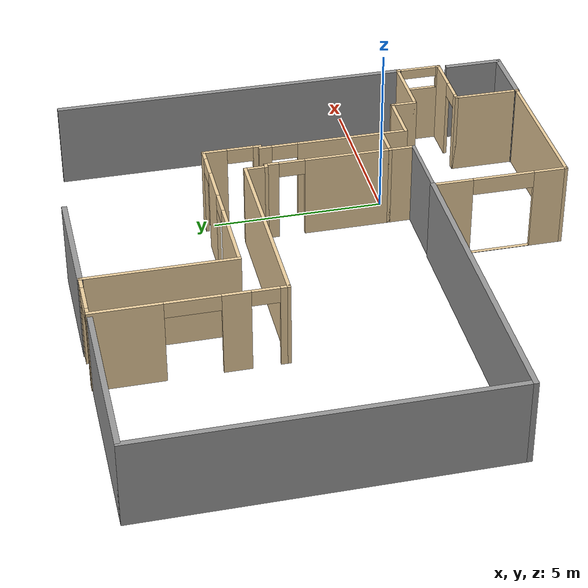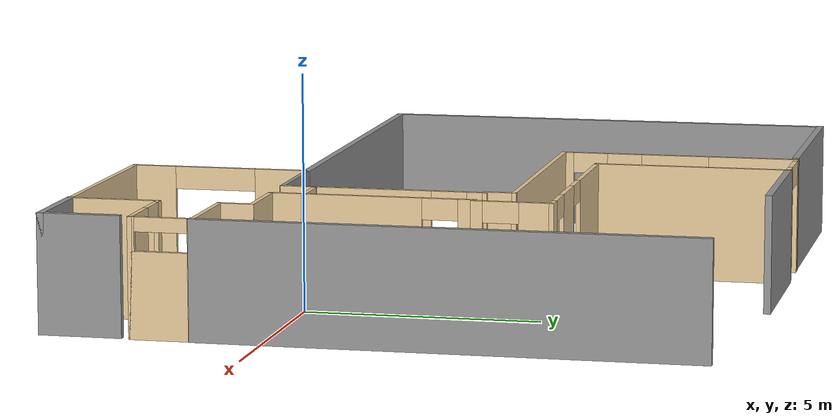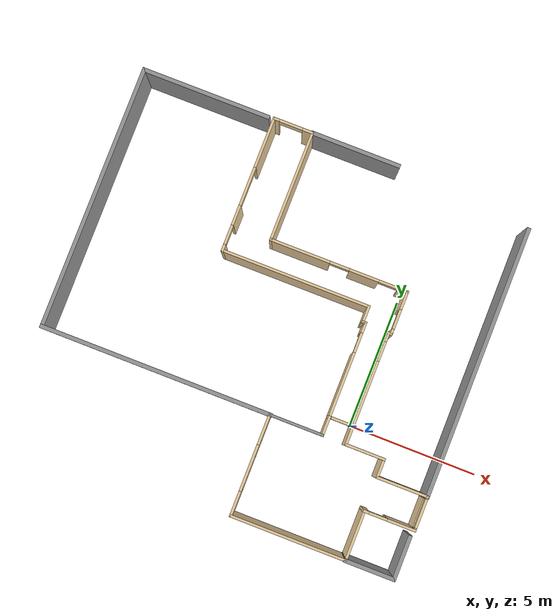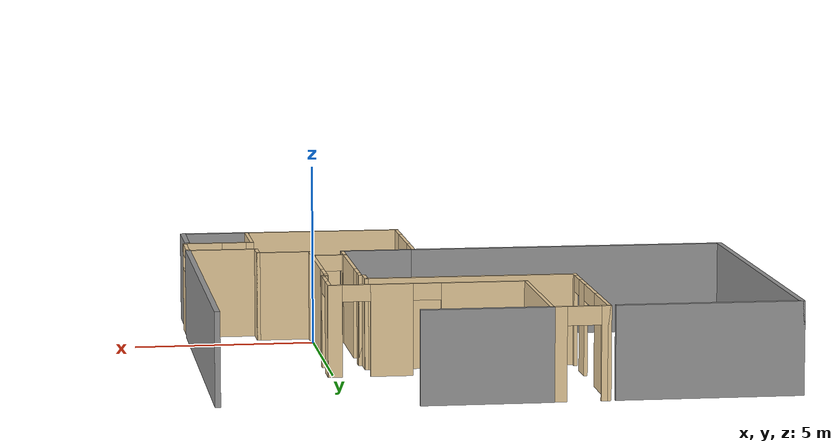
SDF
<?xml version='1.0'?>
<sdf version='1.6'>
  <model name='myroom'>
    <pose frame=''>-4.2 2.43 0 0 -0 0</pose>
    <link name='Wall_19'>
      <collision name='Wall_19_Collision'>
        <geometry>
          <box>
            <size>0.81 0.1 2.5</size>
          </box>
        </geometry>
        <pose frame=''>0 0 1.25 0 -0 0</pose>
      </collision>
      <visual name='Wall_19_Visual'>
        <pose frame=''>0 0 1.25 0 -0 0</pose>
        <geometry>
          <box>
            <size>0.81 0.1 2.5</size>
          </box>
        </geometry>
        <material>
          <script>
            <uri>file://media/materials/scripts/gazebo.material</uri>
            <name>Gazebo/Grey</name>
          </script>
          <ambient>0.921569 0.807843 0.615686 1</ambient>
        </material>
        <meta>
          <layer>0</layer>
        </meta>
      </visual>
      <pose frame=''>4.2 -2.785 0 0 0 -1.5708</pose>
    </link>
    <link name='Wall_22'>
      <collision name='Wall_22_Collision'>
        <geometry>
          <box>
            <size>1.57 0.1 2.5</size>
          </box>
        </geometry>
        <pose frame=''>0 0 1.25 0 -0 0</pose>
      </collision>
      <visual name='Wall_22_Visual'>
        <pose frame=''>0 0 1.25 0 -0 0</pose>
        <geometry>
          <box>
            <size>1.57 0.1 2.5</size>
          </box>
        </geometry>
        <material>
          <script>
            <uri>file://media/materials/scripts/gazebo.material</uri>
            <name>Gazebo/Grey</name>
          </script>
          <ambient>0.921569 0.807843 0.615686 1</ambient>
        </material>
        <meta>
          <layer>0</layer>
        </meta>
      </visual>
      <pose frame=''>4.935 -3.14 0 0 -0 0</pose>
    </link>
    <link name='Wall_24'>
      <collision name='Wall_24_Collision'>
        <geometry>
          <box>
            <size>0.79 0.1 2.5</size>
          </box>
        </geometry>
        <pose frame=''>0 0 1.25 0 -0 0</pose>
      </collision>
      <visual name='Wall_24_Visual'>
        <pose frame=''>0 0 1.25 0 -0 0</pose>
        <geometry>
          <box>
            <size>0.79 0.1 2.5</size>
          </box>
        </geometry>
        <material>
          <script>
            <uri>file://media/materials/scripts/gazebo.material</uri>
            <name>Gazebo/Grey</name>
          </script>
          <ambient>0.921569 0.807843 0.615686 1</ambient>
        </material>
        <meta>
          <layer>0</layer>
        </meta>
      </visual>
      <pose frame=''>5.67 -3.485 0 0 0 -1.5708</pose>
    </link>
    <link name='Wall_26'>
      <collision name='Wall_26_Collision'>
        <geometry>
          <box>
            <size>2.03 0.1 2.5</size>
          </box>
        </geometry>
        <pose frame=''>0 0 1.25 0 -0 0</pose>
      </collision>
      <visual name='Wall_26_Visual'>
        <pose frame=''>0 0 1.25 0 -0 0</pose>
        <geometry>
          <box>
            <size>2.03 0.1 2.5</size>
          </box>
        </geometry>
        <material>
          <script>
            <uri>file://media/materials/scripts/gazebo.material</uri>
            <name>Gazebo/Grey</name>
          </script>
          <ambient>0.921569 0.807843 0.615686 1</ambient>
        </material>
        <meta>
          <layer>0</layer>
        </meta>
      </visual>
      <pose frame=''>6.635 -3.83 0 0 -0 0</pose>
    </link>
    <link name='Wall_28'>
      <pose frame=''>7.6 -4.475 0 0 0 -1.5708</pose>
      <visual name='Wall_28_Visual_0'>
        <pose frame=''>-0.621782 0 1.25 0 -0 0</pose>
        <geometry>
          <box>
            <size>0.146436 0.1 2.5</size>
          </box>
        </geometry>
        <material>
          <script>
            <uri>file://media/materials/scripts/gazebo.material</uri>
            <name>Gazebo/Grey</name>
          </script>
          <ambient>0.921569 0.807843 0.615686 1</ambient>
        </material>
        <meta>
          <layer>0</layer>
        </meta>
      </visual>
      <collision name='Wall_28_Collision_0'>
        <geometry>
          <box>
            <size>0.146436 0.1 2.5</size>
          </box>
        </geometry>
        <pose frame=''>-0.621782 0 1.25 0 -0 0</pose>
      </collision>
      <visual name='Wall_28_Visual_1'>
        <pose frame=''>0.073218 0 0.9 0 -0 0</pose>
        <geometry>
          <box>
            <size>1.24356 0.1 1.8</size>
          </box>
        </geometry>
        <material>
          <script>
            <uri>file://media/materials/scripts/gazebo.material</uri>
            <name>Gazebo/Grey</name>
          </script>
          <ambient>0.921569 0.807843 0.615686 1</ambient>
        </material>
        <meta>
          <layer>0</layer>
        </meta>
      </visual>
      <collision name='Wall_28_Collision_1'>
        <geometry>
          <box>
            <size>1.24356 0.1 1.8</size>
          </box>
        </geometry>
        <pose frame=''>0.073218 0 0.9 0 -0 0</pose>
      </collision>
      <visual name='Wall_28_Visual_2'>
        <pose frame=''>0.623218 0 2.15 0 -0 0</pose>
        <geometry>
          <box>
            <size>0.143564 0.1 0.7</size>
          </box>
        </geometry>
        <material>
          <script>
            <uri>file://media/materials/scripts/gazebo.material</uri>
            <name>Gazebo/Grey</name>
          </script>
          <ambient>0.921569 0.807843 0.615686 1</ambient>
        </material>
        <meta>
          <layer>0</layer>
        </meta>
      </visual>
      <collision name='Wall_28_Collision_2'>
        <geometry>
          <box>
            <size>0.143564 0.1 0.7</size>
          </box>
        </geometry>
        <pose frame=''>0.623218 0 2.15 0 -0 0</pose>
      </collision>
      <visual name='Wall_28_Visual_3'>
        <pose frame=''>0.001436 0 2.35 0 -0 0</pose>
        <geometry>
          <box>
            <size>1.1 0.1 0.3</size>
          </box>
        </geometry>
        <material>
          <script>
            <uri>file://media/materials/scripts/gazebo.material</uri>
            <name>Gazebo/Grey</name>
          </script>
          <ambient>0.921569 0.807843 0.615686 1</ambient>
        </material>
        <meta>
          <layer>0</layer>
        </meta>
      </visual>
      <collision name='Wall_28_Collision_3'>
        <geometry>
          <box>
            <size>1.1 0.1 0.3</size>
          </box>
        </geometry>
        <pose frame=''>0.001436 0 2.35 0 -0 0</pose>
      </collision>
    </link>
    <link name='Wall_30'>
      <pose frame=''>6.635 -5.12 0 0 -0 3.14159</pose>
      <visual name='Wall_30_Visual_0'>
        <pose frame=''>-0.459913 0 1.25 0 -0 0</pose>
        <geometry>
          <box>
            <size>1.11017 0.1 2.5</size>
          </box>
        </geometry>
        <material>
          <script>
            <uri>file://media/materials/scripts/gazebo.material</uri>
            <name>Gazebo/Grey</name>
          </script>
          <ambient>0.921569 0.807843 0.615686 1</ambient>
        </material>
        <meta>
          <layer>0</layer>
        </meta>
      </visual>
      <collision name='Wall_30_Collision_0'>
        <geometry>
          <box>
            <size>1.11017 0.1 2.5</size>
          </box>
        </geometry>
        <pose frame=''>-0.459913 0 1.25 0 -0 0</pose>
      </collision>
      <visual name='Wall_30_Visual_1'>
        <pose frame=''>0.905087 0 1.25 0 -0 0</pose>
        <geometry>
          <box>
            <size>0.219825 0.1 2.5</size>
          </box>
        </geometry>
        <material>
          <script>
            <uri>file://media/materials/scripts/gazebo.material</uri>
            <name>Gazebo/Grey</name>
          </script>
          <ambient>0.921569 0.807843 0.615686 1</ambient>
        </material>
        <meta>
          <layer>0</layer>
        </meta>
      </visual>
      <collision name='Wall_30_Collision_1'>
        <geometry>
          <box>
            <size>0.219825 0.1 2.5</size>
          </box>
        </geometry>
        <pose frame=''>0.905087 0 1.25 0 -0 0</pose>
      </collision>
      <visual name='Wall_30_Visual_2'>
        <pose frame=''>0.445175 0 2.275 0 -0 0</pose>
        <geometry>
          <box>
            <size>0.7 0.1 0.45</size>
          </box>
        </geometry>
        <material>
          <script>
            <uri>file://media/materials/scripts/gazebo.material</uri>
            <name>Gazebo/Grey</name>
          </script>
          <ambient>0.921569 0.807843 0.615686 1</ambient>
        </material>
        <meta>
          <layer>0</layer>
        </meta>
      </visual>
      <collision name='Wall_30_Collision_2'>
        <geometry>
          <box>
            <size>0.7 0.1 0.45</size>
          </box>
        </geometry>
        <pose frame=''>0.445175 0 2.275 0 -0 0</pose>
      </collision>
    </link>
    <link name='Wall_32'>
      <collision name='Wall_32_Collision'>
        <geometry>
          <box>
            <size>1.99 0.1 2.5</size>
          </box>
        </geometry>
        <pose frame=''>0 0 1.25 0 -0 0</pose>
      </collision>
      <visual name='Wall_32_Visual'>
        <pose frame=''>0 0 1.25 0 -0 0</pose>
        <geometry>
          <box>
            <size>1.99 0.1 2.5</size>
          </box>
        </geometry>
        <material>
          <script>
            <uri>file://media/materials/scripts/gazebo.material</uri>
            <name>Gazebo/Grey</name>
          </script>
          <ambient>0.921569 0.807843 0.615686 1</ambient>
        </material>
        <meta>
          <layer>0</layer>
        </meta>
      </visual>
      <pose frame=''>5.67 -6.065 0 0 0 -1.5708</pose>
    </link>
    <link name='Wall_34'>
      <collision name='Wall_34_Collision'>
        <geometry>
          <box>
            <size>4.52 0.1 2.5</size>
          </box>
        </geometry>
        <pose frame=''>0 0 1.25 0 -0 0</pose>
      </collision>
      <visual name='Wall_34_Visual'>
        <pose frame=''>0 0 1.25 0 -0 0</pose>
        <geometry>
          <box>
            <size>4.52 0.1 2.5</size>
          </box>
        </geometry>
        <material>
          <script>
            <uri>file://media/materials/scripts/gazebo.material</uri>
            <name>Gazebo/Grey</name>
          </script>
          <ambient>0.921569 0.807843 0.615686 1</ambient>
        </material>
        <meta>
          <layer>0</layer>
        </meta>
      </visual>
      <pose frame=''>3.46 -7.01 0 0 -0 3.14159</pose>
    </link>
    <link name='Wall_36'>
      <pose frame=''>1.25 -5.0735 0 0 -0 1.5708</pose>
      <visual name='Wall_36_Visual_0'>
        <pose frame=''>-1.4907 0 1.25 0 -0 0</pose>
        <geometry>
          <box>
            <size>0.991176 0.1 2.5</size>
          </box>
        </geometry>
        <material>
          <script>
            <uri>file://media/materials/scripts/gazebo.material</uri>
            <name>Gazebo/Grey</name>
          </script>
          <ambient>0.921569 0.807843 0.615686 1</ambient>
        </material>
        <meta>
          <layer>0</layer>
        </meta>
      </visual>
      <collision name='Wall_36_Collision_0'>
        <geometry>
          <box>
            <size>0.991176 0.1 2.5</size>
          </box>
        </geometry>
        <pose frame=''>-1.4907 0 1.25 0 -0 0</pose>
      </collision>
      <visual name='Wall_36_Visual_1'>
        <pose frame=''>0.495588 0 0.005 0 -0 0</pose>
        <geometry>
          <box>
            <size>2.9814 0.1 0.01</size>
          </box>
        </geometry>
        <material>
          <script>
            <uri>file://media/materials/scripts/gazebo.material</uri>
            <name>Gazebo/Grey</name>
          </script>
          <ambient>0.921569 0.807843 0.615686 1</ambient>
        </material>
        <meta>
          <layer>0</layer>
        </meta>
      </visual>
      <collision name='Wall_36_Collision_1'>
        <geometry>
          <box>
            <size>2.9814 0.1 0.01</size>
          </box>
        </geometry>
        <pose frame=''>0.495588 0 0.005 0 -0 0</pose>
      </collision>
      <visual name='Wall_36_Visual_2'>
        <pose frame=''>1.38559 0 1.255 0 -0 0</pose>
        <geometry>
          <box>
            <size>1.2014 0.1 2.49</size>
          </box>
        </geometry>
        <material>
          <script>
            <uri>file://media/materials/scripts/gazebo.material</uri>
            <name>Gazebo/Grey</name>
          </script>
          <ambient>0.921569 0.807843 0.615686 1</ambient>
        </material>
        <meta>
          <layer>0</layer>
        </meta>
      </visual>
      <collision name='Wall_36_Collision_2'>
        <geometry>
          <box>
            <size>1.2014 0.1 2.49</size>
          </box>
        </geometry>
        <pose frame=''>1.38559 0 1.255 0 -0 0</pose>
      </collision>
      <visual name='Wall_36_Visual_3'>
        <pose frame=''>-0.105111 0 2.255 0 -0 0</pose>
        <geometry>
          <box>
            <size>1.78 0.1 0.49</size>
          </box>
        </geometry>
        <material>
          <script>
            <uri>file://media/materials/scripts/gazebo.material</uri>
            <name>Gazebo/Grey</name>
          </script>
          <ambient>0.921569 0.807843 0.615686 1</ambient>
        </material>
        <meta>
          <layer>0</layer>
        </meta>
      </visual>
      <collision name='Wall_36_Collision_3'>
        <geometry>
          <box>
            <size>1.78 0.1 0.49</size>
          </box>
        </geometry>
        <pose frame=''>-0.105111 0 2.255 0 -0 0</pose>
      </collision>
    </link>
    <link name='Wall_38'>
      <pose frame=''>3.745 -2.43 0 0 -0 3.14159</pose>
      <visual name='Wall_38_Visual_0'>
        <pose frame=''>-0.442506 0 1.25 0 -0 0</pose>
        <geometry>
          <box>
            <size>0.124989 0.1 2.5</size>
          </box>
        </geometry>
        <material>
          <script>
            <uri>file://media/materials/scripts/gazebo.material</uri>
            <name>Gazebo/Grey</name>
          </script>
          <ambient>0.921569 0.807843 0.615686 1</ambient>
        </material>
        <meta>
          <layer>0</layer>
        </meta>
      </visual>
      <collision name='Wall_38_Collision_0'>
        <geometry>
          <box>
            <size>0.124989 0.1 2.5</size>
          </box>
        </geometry>
        <pose frame=''>-0.442506 0 1.25 0 -0 0</pose>
      </collision>
      <visual name='Wall_38_Visual_1'>
        <pose frame=''>0.442494 0 1.25 0 -0 0</pose>
        <geometry>
          <box>
            <size>0.125011 0.1 2.5</size>
          </box>
        </geometry>
        <material>
          <script>
            <uri>file://media/materials/scripts/gazebo.material</uri>
            <name>Gazebo/Grey</name>
          </script>
          <ambient>0.921569 0.807843 0.615686 1</ambient>
        </material>
        <meta>
          <layer>0</layer>
        </meta>
      </visual>
      <collision name='Wall_38_Collision_1'>
        <geometry>
          <box>
            <size>0.125011 0.1 2.5</size>
          </box>
        </geometry>
        <pose frame=''>0.442494 0 1.25 0 -0 0</pose>
      </collision>
      <visual name='Wall_38_Visual_2'>
        <pose frame=''>-1.1e-05 0 2.275 0 -0 0</pose>
        <geometry>
          <box>
            <size>0.76 0.1 0.45</size>
          </box>
        </geometry>
        <material>
          <script>
            <uri>file://media/materials/scripts/gazebo.material</uri>
            <name>Gazebo/Grey</name>
          </script>
          <ambient>0.921569 0.807843 0.615686 1</ambient>
        </material>
        <meta>
          <layer>0</layer>
        </meta>
      </visual>
      <collision name='Wall_38_Collision_2'>
        <geometry>
          <box>
            <size>0.76 0.1 0.45</size>
          </box>
        </geometry>
        <pose frame=''>-1.1e-05 0 2.275 0 -0 0</pose>
      </collision>
    </link>
    <link name='Wall_43'>
      <collision name='Wall_43_Collision'>
        <geometry>
          <box>
            <size>0.8 0.1 2.5</size>
          </box>
        </geometry>
        <pose frame=''>0 0 1.25 0 -0 0</pose>
      </collision>
      <visual name='Wall_43_Visual'>
        <pose frame=''>0 0 1.25 0 -0 0</pose>
        <geometry>
          <box>
            <size>0.8 0.1 2.5</size>
          </box>
        </geometry>
        <material>
          <script>
            <uri>file://media/materials/scripts/gazebo.material</uri>
            <name>Gazebo/Grey</name>
          </script>
          <ambient>0.921569 0.807843 0.615686 1</ambient>
        </material>
        <meta>
          <layer>0</layer>
        </meta>
      </visual>
      <pose frame=''>3.29 -2.78 0 0 0 -1.5708</pose>
    </link>
    <link name='Wall_48'>
      <collision name='Wall_48_Collision'>
        <geometry>
          <box>
            <size>2.14 0.1 2.5</size>
          </box>
        </geometry>
        <pose frame=''>0 0 1.25 0 -0 0</pose>
      </collision>
      <visual name='Wall_48_Visual'>
        <pose frame=''>0 0 1.25 0 -0 0</pose>
        <geometry>
          <box>
            <size>2.14 0.1 2.5</size>
          </box>
        </geometry>
        <material>
          <script>
            <uri>file://media/materials/scripts/gazebo.material</uri>
            <name>Gazebo/Grey</name>
          </script>
          <ambient>1 1 1 1</ambient>
        </material>
        <meta>
          <layer>0</layer>
        </meta>
      </visual>
      <pose frame=''>2.27 -3.13 0 0 -0 3.14159</pose>
    </link>
    <link name='Wall_50'>
      <pose frame=''>3.29 -0.61 0 0 -0 1.5708</pose>
      <visual name='Wall_50_Visual_0'>
        <pose frame=''>-0.593478 0 1.25 0 -0 0</pose>
        <geometry>
          <box>
            <size>2.55304 0.1 2.5</size>
          </box>
        </geometry>
        <material>
          <script>
            <uri>file://media/materials/scripts/gazebo.material</uri>
            <name>Gazebo/Grey</name>
          </script>
          <ambient>0.921569 0.807843 0.615686 1</ambient>
        </material>
        <meta>
          <layer>0</layer>
        </meta>
      </visual>
      <collision name='Wall_50_Collision_0'>
        <geometry>
          <box>
            <size>2.55304 0.1 2.5</size>
          </box>
        </geometry>
        <pose frame=''>-0.593478 0 1.25 0 -0 0</pose>
      </collision>
      <visual name='Wall_50_Visual_1'>
        <pose frame=''>1.65652 0 1.25 0 -0 0</pose>
        <geometry>
          <box>
            <size>0.426956 0.1 2.5</size>
          </box>
        </geometry>
        <material>
          <script>
            <uri>file://media/materials/scripts/gazebo.material</uri>
            <name>Gazebo/Grey</name>
          </script>
          <ambient>0.921569 0.807843 0.615686 1</ambient>
        </material>
        <meta>
          <layer>0</layer>
        </meta>
      </visual>
      <collision name='Wall_50_Collision_1'>
        <geometry>
          <box>
            <size>0.426956 0.1 2.5</size>
          </box>
        </geometry>
        <pose frame=''>1.65652 0 1.25 0 -0 0</pose>
      </collision>
      <visual name='Wall_50_Visual_2'>
        <pose frame=''>1.06304 0 2.275 0 -0 0</pose>
        <geometry>
          <box>
            <size>0.76 0.1 0.45</size>
          </box>
        </geometry>
        <material>
          <script>
            <uri>file://media/materials/scripts/gazebo.material</uri>
            <name>Gazebo/Grey</name>
          </script>
          <ambient>0.921569 0.807843 0.615686 1</ambient>
        </material>
        <meta>
          <layer>0</layer>
        </meta>
      </visual>
      <collision name='Wall_50_Collision_2'>
        <geometry>
          <box>
            <size>0.76 0.1 0.45</size>
          </box>
        </geometry>
        <pose frame=''>1.06304 0 2.275 0 -0 0</pose>
      </collision>
    </link>
    <link name='Wall_52'>
      <collision name='Wall_52_Collision'>
        <geometry>
          <box>
            <size>0.2 0.1 2.5</size>
          </box>
        </geometry>
        <pose frame=''>0 0 1.25 0 -0 0</pose>
      </collision>
      <visual name='Wall_52_Visual'>
        <pose frame=''>0 0 1.25 0 -0 0</pose>
        <geometry>
          <box>
            <size>0.2 0.1 2.5</size>
          </box>
        </geometry>
        <material>
          <script>
            <uri>file://media/materials/scripts/gazebo.material</uri>
            <name>Gazebo/Grey</name>
          </script>
          <ambient>0.921569 0.807843 0.615686 1</ambient>
        </material>
        <meta>
          <layer>0</layer>
        </meta>
      </visual>
      <pose frame=''>3.24 1.21 0 0 -0 3.14159</pose>
    </link>
    <link name='Wall_53'>
      <collision name='Wall_53_Collision'>
        <geometry>
          <box>
            <size>0.7 0.1 2.5</size>
          </box>
        </geometry>
        <pose frame=''>0 0 1.25 0 -0 0</pose>
      </collision>
      <visual name='Wall_53_Visual'>
        <pose frame=''>0 0 1.25 0 -0 0</pose>
        <geometry>
          <box>
            <size>0.7 0.1 2.5</size>
          </box>
        </geometry>
        <material>
          <script>
            <uri>file://media/materials/scripts/gazebo.material</uri>
            <name>Gazebo/Grey</name>
          </script>
          <ambient>0.921569 0.807843 0.615686 1</ambient>
        </material>
        <meta>
          <layer>0</layer>
        </meta>
      </visual>
      <pose frame=''>3.19 1.51 0 0 -0 1.5708</pose>
    </link>
    <link name='Wall_54'>
      <collision name='Wall_54_Collision'>
        <geometry>
          <box>
            <size>5.8 0.1 2.5</size>
          </box>
        </geometry>
        <pose frame=''>0 0 1.25 0 -0 0</pose>
      </collision>
      <visual name='Wall_54_Visual'>
        <pose frame=''>0 0 1.25 0 -0 0</pose>
        <geometry>
          <box>
            <size>5.8 0.1 2.5</size>
          </box>
        </geometry>
        <material>
          <script>
            <uri>file://media/materials/scripts/gazebo.material</uri>
            <name>Gazebo/Grey</name>
          </script>
          <ambient>0.921569 0.807843 0.615686 1</ambient>
        </material>
        <meta>
          <layer>0</layer>
        </meta>
      </visual>
      <pose frame=''>0.34 1.81 0 0 -0 3.14159</pose>
    </link>
    <link name='Wall_56'>
      <pose frame=''>4.2 -0.63 0 0 -0 1.5708</pose>
      <visual name='Wall_56_Visual_0'>
        <pose frame=''>-0.569733 0 1.25 0 -0 0</pose>
        <geometry>
          <box>
            <size>2.56053 0.1 2.5</size>
          </box>
        </geometry>
        <material>
          <script>
            <uri>file://media/materials/scripts/gazebo.material</uri>
            <name>Gazebo/Grey</name>
          </script>
          <ambient>0.921569 0.807843 0.615686 1</ambient>
        </material>
        <meta>
          <layer>0</layer>
        </meta>
      </visual>
      <collision name='Wall_56_Collision_0'>
        <geometry>
          <box>
            <size>2.56053 0.1 2.5</size>
          </box>
        </geometry>
        <pose frame=''>-0.569733 0 1.25 0 -0 0</pose>
      </collision>
      <visual name='Wall_56_Visual_1'>
        <pose frame=''>1.66027 0 1.25 0 -0 0</pose>
        <geometry>
          <box>
            <size>0.379466 0.1 2.5</size>
          </box>
        </geometry>
        <material>
          <script>
            <uri>file://media/materials/scripts/gazebo.material</uri>
            <name>Gazebo/Grey</name>
          </script>
          <ambient>0.921569 0.807843 0.615686 1</ambient>
        </material>
        <meta>
          <layer>0</layer>
        </meta>
      </visual>
      <collision name='Wall_56_Collision_1'>
        <geometry>
          <box>
            <size>0.379466 0.1 2.5</size>
          </box>
        </geometry>
        <pose frame=''>1.66027 0 1.25 0 -0 0</pose>
      </collision>
      <visual name='Wall_56_Visual_2'>
        <pose frame=''>1.09053 0 2.275 0 -0 0</pose>
        <geometry>
          <box>
            <size>0.76 0.1 0.45</size>
          </box>
        </geometry>
        <material>
          <script>
            <uri>file://media/materials/scripts/gazebo.material</uri>
            <name>Gazebo/Grey</name>
          </script>
          <ambient>0.921569 0.807843 0.615686 1</ambient>
        </material>
        <meta>
          <layer>0</layer>
        </meta>
      </visual>
      <collision name='Wall_56_Collision_2'>
        <geometry>
          <box>
            <size>0.76 0.1 0.45</size>
          </box>
        </geometry>
        <pose frame=''>1.09053 0 2.275 0 -0 0</pose>
      </collision>
    </link>
    <link name='Wall_57'>
      <collision name='Wall_57_Collision'>
        <geometry>
          <box>
            <size>0.2 0.1 2.5</size>
          </box>
        </geometry>
        <pose frame=''>0 0 1.25 0 -0 0</pose>
      </collision>
      <visual name='Wall_57_Visual'>
        <pose frame=''>0 0 1.25 0 -0 0</pose>
        <geometry>
          <box>
            <size>0.2 0.1 2.5</size>
          </box>
        </geometry>
        <material>
          <script>
            <uri>file://media/materials/scripts/gazebo.material</uri>
            <name>Gazebo/Grey</name>
          </script>
          <ambient>0.921569 0.807843 0.615686 1</ambient>
        </material>
        <meta>
          <layer>0</layer>
        </meta>
      </visual>
      <pose frame=''>4.25 1.17 0 0 -0 0</pose>
    </link>
    <link name='Wall_58'>
      <pose frame=''>4.3 1.97 0 0 -0 1.5708</pose>
      <visual name='Wall_58_Visual_0'>
        <pose frame=''>-0.725824 0 1.25 0 -0 0</pose>
        <geometry>
          <box>
            <size>0.248351 0.1 2.5</size>
          </box>
        </geometry>
        <material>
          <script>
            <uri>file://media/materials/scripts/gazebo.material</uri>
            <name>Gazebo/Grey</name>
          </script>
          <ambient>0.921569 0.807843 0.615686 1</ambient>
        </material>
        <meta>
          <layer>0</layer>
        </meta>
      </visual>
      <collision name='Wall_58_Collision_0'>
        <geometry>
          <box>
            <size>0.248351 0.1 2.5</size>
          </box>
        </geometry>
        <pose frame=''>-0.725824 0 1.25 0 -0 0</pose>
      </collision>
      <visual name='Wall_58_Visual_1'>
        <pose frame=''>0.504176 0 1.25 0 -0 0</pose>
        <geometry>
          <box>
            <size>0.691649 0.1 2.5</size>
          </box>
        </geometry>
        <material>
          <script>
            <uri>file://media/materials/scripts/gazebo.material</uri>
            <name>Gazebo/Grey</name>
          </script>
          <ambient>0.921569 0.807843 0.615686 1</ambient>
        </material>
        <meta>
          <layer>0</layer>
        </meta>
      </visual>
      <collision name='Wall_58_Collision_1'>
        <geometry>
          <box>
            <size>0.691649 0.1 2.5</size>
          </box>
        </geometry>
        <pose frame=''>0.504176 0 1.25 0 -0 0</pose>
      </collision>
      <visual name='Wall_58_Visual_2'>
        <pose frame=''>-0.221649 0 2.275 0 -0 0</pose>
        <geometry>
          <box>
            <size>0.76 0.1 0.45</size>
          </box>
        </geometry>
        <material>
          <script>
            <uri>file://media/materials/scripts/gazebo.material</uri>
            <name>Gazebo/Grey</name>
          </script>
          <ambient>0.921569 0.807843 0.615686 1</ambient>
        </material>
        <meta>
          <layer>0</layer>
        </meta>
      </visual>
      <collision name='Wall_58_Collision_2'>
        <geometry>
          <box>
            <size>0.76 0.1 0.45</size>
          </box>
        </geometry>
        <pose frame=''>-0.221649 0 2.275 0 -0 0</pose>
      </collision>
    </link>
    <link name='Wall_62'>
      <pose frame=''>-2.51 4.41 0 0 -0 1.5708</pose>
      <visual name='Wall_62_Visual_0'>
        <pose frame=''>-2.51076 0 1.25 0 -0 0</pose>
        <geometry>
          <box>
            <size>0.278473 0.1 2.5</size>
          </box>
        </geometry>
        <material>
          <script>
            <uri>file://media/materials/scripts/gazebo.material</uri>
            <name>Gazebo/Grey</name>
          </script>
          <ambient>0.921569 0.807843 0.615686 1</ambient>
        </material>
        <meta>
          <layer>0</layer>
        </meta>
      </visual>
      <collision name='Wall_62_Collision_0'>
        <geometry>
          <box>
            <size>0.278473 0.1 2.5</size>
          </box>
        </geometry>
        <pose frame=''>-2.51076 0 1.25 0 -0 0</pose>
      </collision>
      <visual name='Wall_62_Visual_1'>
        <pose frame=''>-1.2242 0 1.25 0 -0 0</pose>
        <geometry>
          <box>
            <size>0.774661 0.1 2.5</size>
          </box>
        </geometry>
        <material>
          <script>
            <uri>file://media/materials/scripts/gazebo.material</uri>
            <name>Gazebo/Grey</name>
          </script>
          <ambient>0.921569 0.807843 0.615686 1</ambient>
        </material>
        <meta>
          <layer>0</layer>
        </meta>
      </visual>
      <collision name='Wall_62_Collision_1'>
        <geometry>
          <box>
            <size>0.774661 0.1 2.5</size>
          </box>
        </geometry>
        <pose frame=''>-1.2242 0 1.25 0 -0 0</pose>
      </collision>
      <visual name='Wall_62_Visual_2'>
        <pose frame=''>1.65657 0 1.25 0 -0 0</pose>
        <geometry>
          <box>
            <size>1.98687 0.1 2.5</size>
          </box>
        </geometry>
        <material>
          <script>
            <uri>file://media/materials/scripts/gazebo.material</uri>
            <name>Gazebo/Grey</name>
          </script>
          <ambient>0.921569 0.807843 0.615686 1</ambient>
        </material>
        <meta>
          <layer>0</layer>
        </meta>
      </visual>
      <collision name='Wall_62_Collision_2'>
        <geometry>
          <box>
            <size>1.98687 0.1 2.5</size>
          </box>
        </geometry>
        <pose frame=''>1.65657 0 1.25 0 -0 0</pose>
      </collision>
      <visual name='Wall_62_Visual_3'>
        <pose frame=''>-1.99153 0 2.275 0 -0 0</pose>
        <geometry>
          <box>
            <size>0.76 0.1 0.45</size>
          </box>
        </geometry>
        <material>
          <script>
            <uri>file://media/materials/scripts/gazebo.material</uri>
            <name>Gazebo/Grey</name>
          </script>
          <ambient>0.921569 0.807843 0.615686 1</ambient>
        </material>
        <meta>
          <layer>0</layer>
        </meta>
      </visual>
      <collision name='Wall_62_Collision_3'>
        <geometry>
          <box>
            <size>0.76 0.1 0.45</size>
          </box>
        </geometry>
        <pose frame=''>-1.99153 0 2.275 0 -0 0</pose>
      </collision>
      <visual name='Wall_62_Visual_4'>
        <pose frame=''>-0.086866 0 2.275 0 -0 0</pose>
        <geometry>
          <box>
            <size>1.5 0.1 0.45</size>
          </box>
        </geometry>
        <material>
          <script>
            <uri>file://media/materials/scripts/gazebo.material</uri>
            <name>Gazebo/Grey</name>
          </script>
          <ambient>0.921569 0.807843 0.615686 1</ambient>
        </material>
        <meta>
          <layer>0</layer>
        </meta>
      </visual>
      <collision name='Wall_62_Collision_4'>
        <geometry>
          <box>
            <size>1.5 0.1 0.45</size>
          </box>
        </geometry>
        <pose frame=''>-0.086866 0 2.275 0 -0 0</pose>
      </collision>
    </link>
    <link name='Wall_64'>
      <pose frame=''>-1.76 7.01 0 0 -0 0</pose>
      <visual name='Wall_64_Visual_0'>
        <pose frame=''>-0.668872 0 1.25 0 -0 0</pose>
        <geometry>
          <box>
            <size>0.262256 0.1 2.5</size>
          </box>
        </geometry>
        <material>
          <script>
            <uri>file://media/materials/scripts/gazebo.material</uri>
            <name>Gazebo/Grey</name>
          </script>
          <ambient>0.921569 0.807843 0.615686 1</ambient>
        </material>
        <meta>
          <layer>0</layer>
        </meta>
      </visual>
      <collision name='Wall_64_Collision_0'>
        <geometry>
          <box>
            <size>0.262256 0.1 2.5</size>
          </box>
        </geometry>
        <pose frame=''>-0.668872 0 1.25 0 -0 0</pose>
      </collision>
      <visual name='Wall_64_Visual_1'>
        <pose frame=''>0.581128 0 1.25 0 -0 0</pose>
        <geometry>
          <box>
            <size>0.437744 0.1 2.5</size>
          </box>
        </geometry>
        <material>
          <script>
            <uri>file://media/materials/scripts/gazebo.material</uri>
            <name>Gazebo/Grey</name>
          </script>
          <ambient>0.921569 0.807843 0.615686 1</ambient>
        </material>
        <meta>
          <layer>0</layer>
        </meta>
      </visual>
      <collision name='Wall_64_Collision_1'>
        <geometry>
          <box>
            <size>0.437744 0.1 2.5</size>
          </box>
        </geometry>
        <pose frame=''>0.581128 0 1.25 0 -0 0</pose>
      </collision>
      <visual name='Wall_64_Visual_2'>
        <pose frame=''>-0.087744 0 2.25 0 -0 0</pose>
        <geometry>
          <box>
            <size>0.9 0.1 0.5</size>
          </box>
        </geometry>
        <material>
          <script>
            <uri>file://media/materials/scripts/gazebo.material</uri>
            <name>Gazebo/Grey</name>
          </script>
          <ambient>0.921569 0.807843 0.615686 1</ambient>
        </material>
        <meta>
          <layer>0</layer>
        </meta>
      </visual>
      <collision name='Wall_64_Collision_2'>
        <geometry>
          <box>
            <size>0.9 0.1 0.5</size>
          </box>
        </geometry>
        <pose frame=''>-0.087744 0 2.25 0 -0 0</pose>
      </collision>
    </link>
    <link name='Wall_66'>
      <collision name='Wall_66_Collision'>
        <geometry>
          <box>
            <size>4.30002 0.1 2.5</size>
          </box>
        </geometry>
        <pose frame=''>0 0 1.25 0 -0 0</pose>
      </collision>
      <visual name='Wall_66_Visual'>
        <pose frame=''>0 0 1.25 0 -0 0</pose>
        <geometry>
          <box>
            <size>4.30002 0.1 2.5</size>
          </box>
        </geometry>
        <material>
          <script>
            <uri>file://media/materials/scripts/gazebo.material</uri>
            <name>Gazebo/Grey</name>
          </script>
          <ambient>0.921569 0.807843 0.615686 1</ambient>
        </material>
        <meta>
          <layer>0</layer>
        </meta>
      </visual>
      <pose frame=''>-1.01 4.91 0 0 0 -1.5708</pose>
    </link>
    <link name='Wall_68'>
      <pose frame=''>1.645 2.81 0 0 -0 0</pose>
      <visual name='Wall_68_Visual_0'>
        <pose frame=''>-1.53066 0 1.25 0 -0 0</pose>
        <geometry>
          <box>
            <size>2.34868 0.1 2.5</size>
          </box>
        </geometry>
        <material>
          <script>
            <uri>file://media/materials/scripts/gazebo.material</uri>
            <name>Gazebo/Grey</name>
          </script>
          <ambient>0.921569 0.807843 0.615686 1</ambient>
        </material>
        <meta>
          <layer>0</layer>
        </meta>
      </visual>
      <collision name='Wall_68_Collision_0'>
        <geometry>
          <box>
            <size>2.34868 0.1 2.5</size>
          </box>
        </geometry>
        <pose frame=''>-1.53066 0 1.25 0 -0 0</pose>
      </collision>
      <visual name='Wall_68_Visual_1'>
        <pose frame=''>0.980366 0 1.25 0 -0 0</pose>
        <geometry>
          <box>
            <size>1.15337 0.1 2.5</size>
          </box>
        </geometry>
        <material>
          <script>
            <uri>file://media/materials/scripts/gazebo.material</uri>
            <name>Gazebo/Grey</name>
          </script>
          <ambient>0.921569 0.807843 0.615686 1</ambient>
        </material>
        <meta>
          <layer>0</layer>
        </meta>
      </visual>
      <collision name='Wall_68_Collision_1'>
        <geometry>
          <box>
            <size>1.15337 0.1 2.5</size>
          </box>
        </geometry>
        <pose frame=''>0.980366 0 1.25 0 -0 0</pose>
      </collision>
      <visual name='Wall_68_Visual_2'>
        <pose frame=''>2.51103 0 1.25 0 -0 0</pose>
        <geometry>
          <box>
            <size>0.387948 0.1 2.5</size>
          </box>
        </geometry>
        <material>
          <script>
            <uri>file://media/materials/scripts/gazebo.material</uri>
            <name>Gazebo/Grey</name>
          </script>
          <ambient>0.921569 0.807843 0.615686 1</ambient>
        </material>
        <meta>
          <layer>0</layer>
        </meta>
      </visual>
      <collision name='Wall_68_Collision_2'>
        <geometry>
          <box>
            <size>0.387948 0.1 2.5</size>
          </box>
        </geometry>
        <pose frame=''>2.51103 0 1.25 0 -0 0</pose>
      </collision>
      <visual name='Wall_68_Visual_3'>
        <pose frame=''>0.02368 0 2.275 0 -0 0</pose>
        <geometry>
          <box>
            <size>0.76 0.1 0.45</size>
          </box>
        </geometry>
        <material>
          <script>
            <uri>file://media/materials/scripts/gazebo.material</uri>
            <name>Gazebo/Grey</name>
          </script>
          <ambient>0.921569 0.807843 0.615686 1</ambient>
        </material>
        <meta>
          <layer>0</layer>
        </meta>
      </visual>
      <collision name='Wall_68_Collision_3'>
        <geometry>
          <box>
            <size>0.76 0.1 0.45</size>
          </box>
        </geometry>
        <pose frame=''>0.02368 0 2.275 0 -0 0</pose>
      </collision>
      <visual name='Wall_68_Visual_4'>
        <pose frame=''>1.93705 0 2.275 0 -0 0</pose>
        <geometry>
          <box>
            <size>0.76 0.1 0.45</size>
          </box>
        </geometry>
        <material>
          <script>
            <uri>file://media/materials/scripts/gazebo.material</uri>
            <name>Gazebo/Grey</name>
          </script>
          <ambient>0.921569 0.807843 0.615686 1</ambient>
        </material>
        <meta>
          <layer>0</layer>
        </meta>
      </visual>
      <collision name='Wall_68_Collision_4'>
        <geometry>
          <box>
            <size>0.76 0.1 0.45</size>
          </box>
        </geometry>
        <pose frame=''>1.93705 0 2.275 0 -0 0</pose>
      </collision>
    </link>
    <link name='Wall_70'>
      <collision name='Wall_70_Collision'>
        <geometry>
          <box>
            <size>9 0.15 2.5</size>
          </box>
        </geometry>
        <pose frame=''>0 0 1.25 0 -0 0</pose>
      </collision>
      <visual name='Wall_70_Visual'>
        <pose frame=''>0 0 1.25 0 -0 0</pose>
        <geometry>
          <box>
            <size>9 0.15 2.5</size>
          </box>
        </geometry>
        <material>
          <script>
            <uri>file://media/materials/scripts/gazebo.material</uri>
            <name>Gazebo/Grey</name>
          </script>
          <ambient>1 1 1 1</ambient>
        </material>
        <meta>
          <layer>0</layer>
        </meta>
      </visual>
      <pose frame=''>-3.175 -3.13 0 0 -0 3.14159</pose>
    </link>
    <link name='Wall_71'>
      <collision name='Wall_71_Collision'>
        <geometry>
          <box>
            <size>10.25 0.15 2.5</size>
          </box>
        </geometry>
        <pose frame=''>0 0 1.25 0 -0 0</pose>
      </collision>
      <visual name='Wall_71_Visual'>
        <pose frame=''>0 0 1.25 0 -0 0</pose>
        <geometry>
          <box>
            <size>10.25 0.15 2.5</size>
          </box>
        </geometry>
        <material>
          <script>
            <uri>file://media/materials/scripts/gazebo.material</uri>
            <name>Gazebo/Grey</name>
          </script>
          <ambient>1 1 1 1</ambient>
        </material>
        <meta>
          <layer>0</layer>
        </meta>
      </visual>
      <pose frame=''>-7.6 1.92 0 0 -0 1.5708</pose>
    </link>
    <link name='Wall_72'>
      <collision name='Wall_72_Collision'>
        <geometry>
          <box>
            <size>5 0.15 2.5</size>
          </box>
        </geometry>
        <pose frame=''>0 0 1.25 0 -0 0</pose>
      </collision>
      <visual name='Wall_72_Visual'>
        <pose frame=''>0 0 1.25 0 -0 0</pose>
        <geometry>
          <box>
            <size>5 0.15 2.5</size>
          </box>
        </geometry>
        <material>
          <script>
            <uri>file://media/materials/scripts/gazebo.material</uri>
            <name>Gazebo/Grey</name>
          </script>
          <ambient>1 1 1 1</ambient>
        </material>
        <meta>
          <layer>0</layer>
        </meta>
      </visual>
      <pose frame=''>-5.175 6.97 0 0 -0 0</pose>
    </link>
    <link name='Wall_78'>
      <collision name='Wall_78_Collision'>
        <geometry>
          <box>
            <size>2 0.15 2.5</size>
          </box>
        </geometry>
        <pose frame=''>0 0 1.25 0 -0 0</pose>
      </collision>
      <visual name='Wall_78_Visual'>
        <pose frame=''>0 0 1.25 0 -0 0</pose>
        <geometry>
          <box>
            <size>2 0.15 2.5</size>
          </box>
        </geometry>
        <material>
          <script>
            <uri>file://media/materials/scripts/gazebo.material</uri>
            <name>Gazebo/Grey</name>
          </script>
          <ambient>1 1 1 1</ambient>
        </material>
        <meta>
          <layer>0</layer>
        </meta>
      </visual>
      <pose frame=''>6.595 -7.01 0 0 -0 0</pose>
    </link>
    <link name='Wall_79'>
      <collision name='Wall_79_Collision'>
        <geometry>
          <box>
            <size>1.75 0.15 2.5</size>
          </box>
        </geometry>
        <pose frame=''>0 0 1.25 0 -0 0</pose>
      </collision>
      <visual name='Wall_79_Visual'>
        <pose frame=''>0 0 1.25 0 -0 0</pose>
        <geometry>
          <box>
            <size>1.75 0.15 2.5</size>
          </box>
        </geometry>
        <material>
          <script>
            <uri>file://media/materials/scripts/gazebo.material</uri>
            <name>Gazebo/Grey</name>
          </script>
          <ambient>1 1 1 1</ambient>
        </material>
        <meta>
          <layer>0</layer>
        </meta>
      </visual>
      <pose frame=''>7.52 -6.21 0 0 -0 1.5708</pose>
    </link>
    <link name='Wall_81'>
      <collision name='Wall_81_Collision'>
        <geometry>
          <box>
            <size>10.5 0.15 2.5</size>
          </box>
        </geometry>
        <pose frame=''>0 0 1.25 0 -0 0</pose>
      </collision>
      <visual name='Wall_81_Visual'>
        <pose frame=''>0 0 1.25 0 -0 0</pose>
        <geometry>
          <box>
            <size>10.5 0.15 2.5</size>
          </box>
        </geometry>
        <material>
          <script>
            <uri>file://media/materials/scripts/gazebo.material</uri>
            <name>Gazebo/Grey</name>
          </script>
          <ambient>1 1 1 1</ambient>
        </material>
        <meta>
          <layer>0</layer>
        </meta>
      </visual>
      <pose frame=''>7.6 1.345 0 0 -0 1.5708</pose>
    </link>
    <link name='Wall_83'>
      <collision name='Wall_83_Collision'>
        <geometry>
          <box>
            <size>3.5 0.15 2.5</size>
          </box>
        </geometry>
        <pose frame=''>0 0 1.25 0 -0 0</pose>
      </collision>
      <visual name='Wall_83_Visual'>
        <pose frame=''>0 0 1.25 0 -0 0</pose>
        <geometry>
          <box>
            <size>3.5 0.15 2.5</size>
          </box>
        </geometry>
        <material>
          <script>
            <uri>file://media/materials/scripts/gazebo.material</uri>
            <name>Gazebo/Grey</name>
          </script>
          <ambient>1 1 1 1</ambient>
        </material>
        <meta>
          <layer>0</layer>
        </meta>
      </visual>
      <pose frame=''>0.6765 7.01 0 0 -0 0</pose>
    </link>
    <static>1</static>
  </model>
</sdf>
